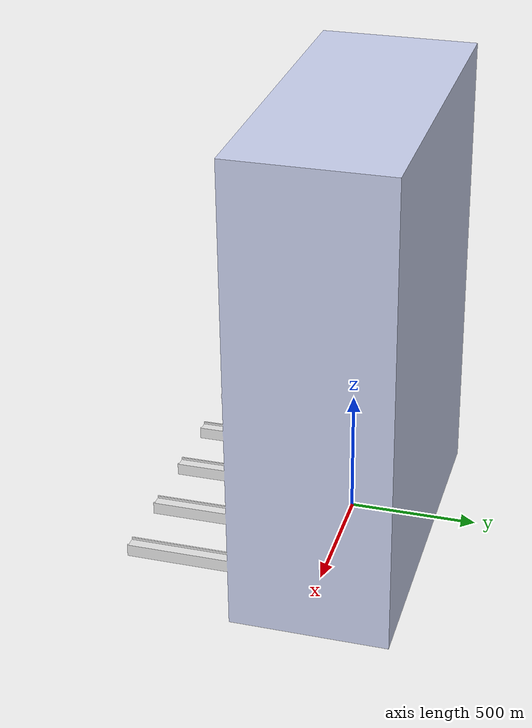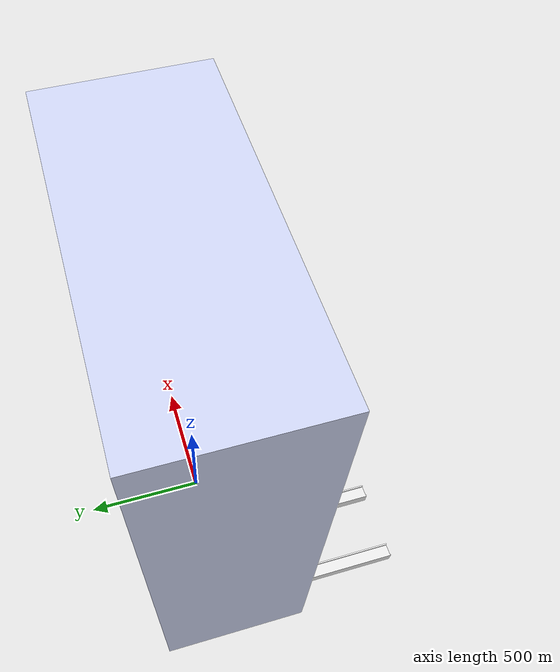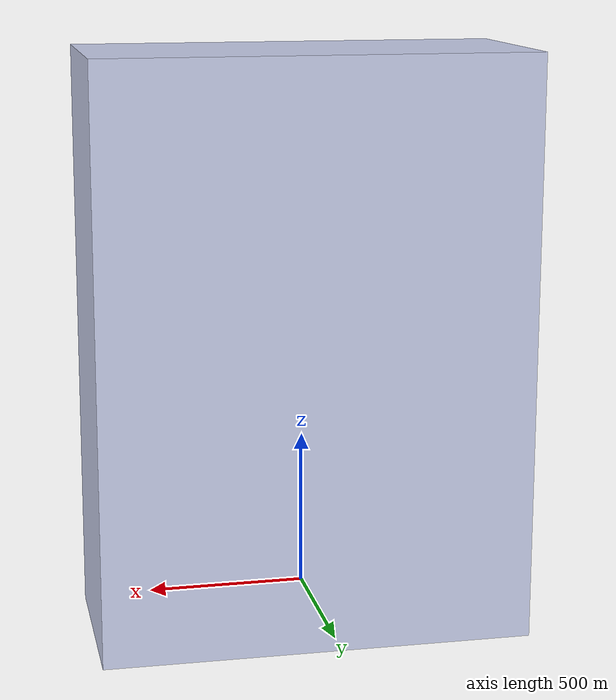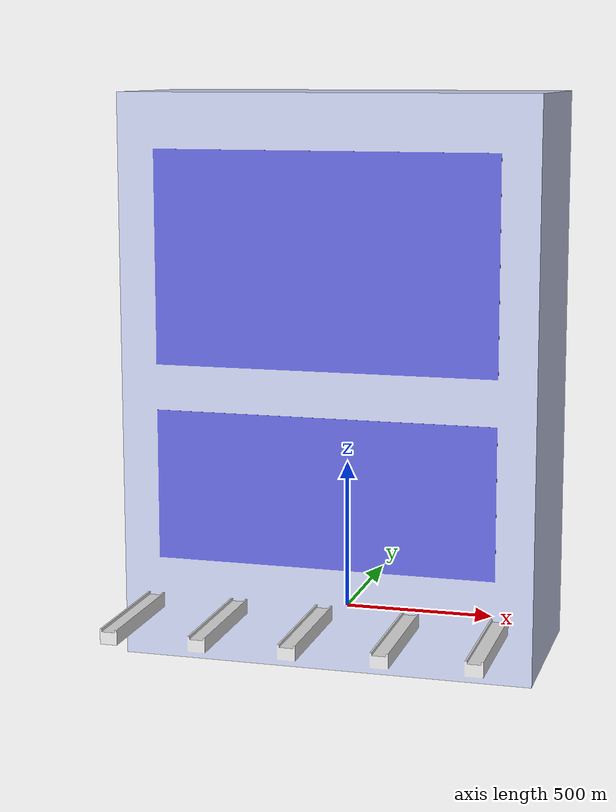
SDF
<?xml version="1.0" ?>
<sdf version="1.8">
  <model name="asrs" canonical_link="asrs_link">
    <static>true</static>
    <link name="asrs_link">
      <!-- Visual representation using your DAE file -->
      <visual name="visual">
        <geometry>
          <mesh>
            <uri>file:///home/meditab/car_ws_new/src/hey_agv_new/urdf/asrs.dae</uri>
            <scale>1 1 1</scale>
          </mesh>
        </geometry>
      </visual>

      <!-- Collision geometry - enabled for static model -->
      <collision name="collision">
        <geometry>
          <mesh>
            <uri>file:///home/meditab/car_ws_new/src/hey_agv_new/urdf/asrs.dae</uri>
            <scale>1 1 1</scale>
          </mesh>
        </geometry>
        <surface>
          <contact>
            <collide_bitmask>0x01</collide_bitmask>
          </contact>
          <friction>
            <ode>
              <mu>0.1</mu>
              <mu2>0.1</mu2>
            </ode>
          </friction>
        </surface>
      </collision>
    </link>
  </model>
</sdf>
